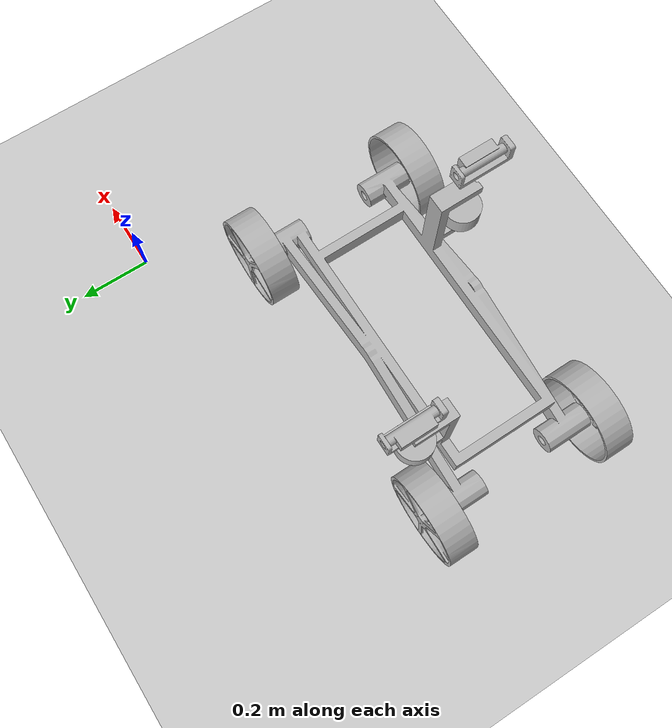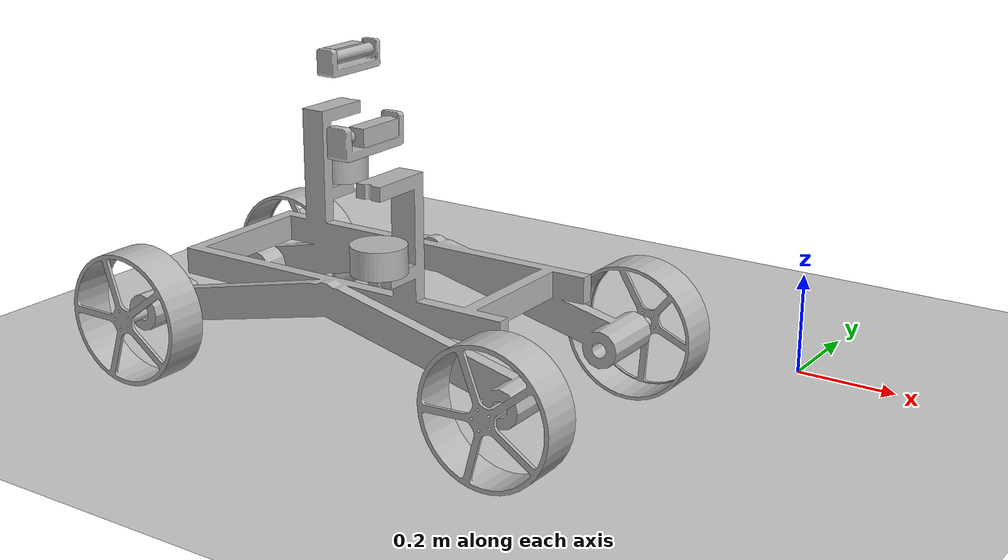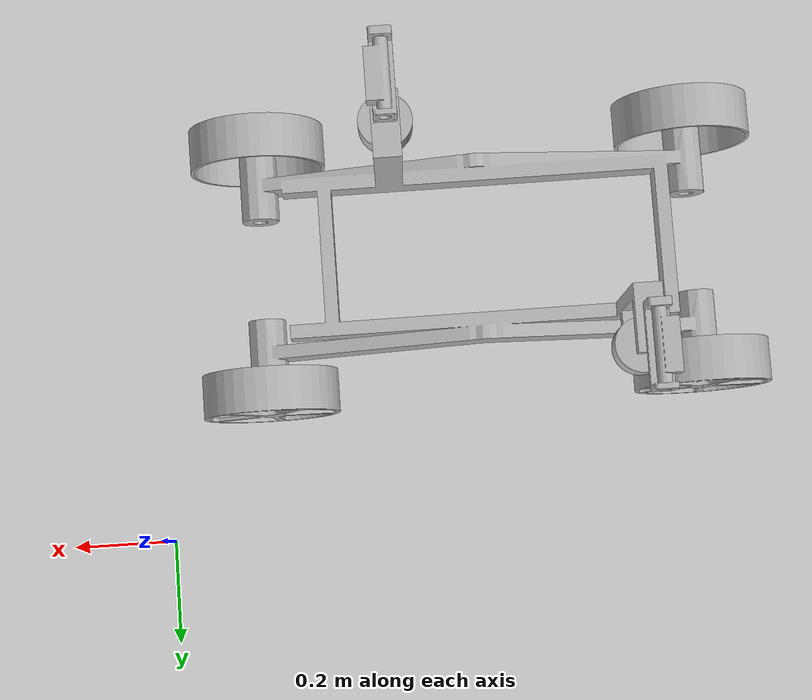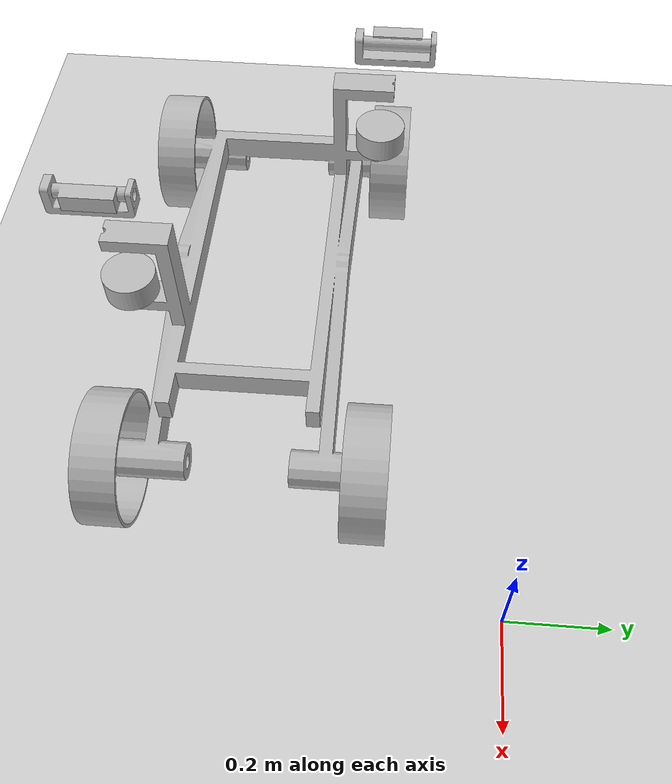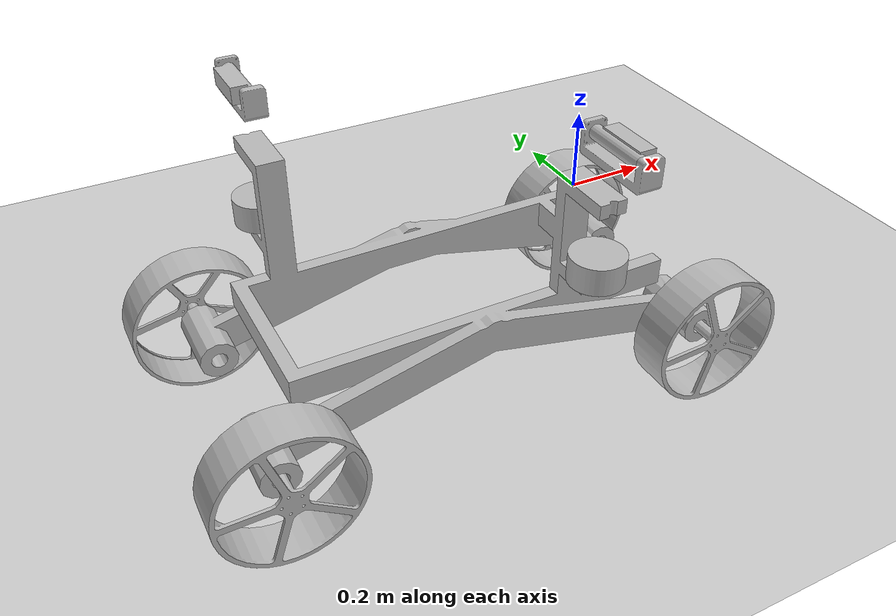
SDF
<sdf version="1.6">
 <world name="default">
  <light name="sun" type="directional">
   <pose>0 0 10 0 -0 0</pose>
   <diffuse>0.8 0.8 0.8 1</diffuse>
   <specular>0.2 0.2 0.2 1</specular>
   <attenuation>
    <range>1000</range>
    <constant>0.9</constant>
    <linear>0.01</linear>
    <quadratic>0.001</quadratic>
   </attenuation>
   <direction>-0.5 0.1 -0.9</direction>
  </light>
  <model name="ground_plane">
   <static>1</static>
   <link name="link">
    <collision name="collision">
     <geometry><plane><normal>0 0 1</normal><size>100 100</size></plane></geometry>
     <surface>
      <contact><collide_bitmask>65535</collide_bitmask></contact>
      <friction><ode><mu>100</mu><mu2>50</mu2></ode></friction>
     </surface>
    </collision>
    <visual name="visual">
     <cast_shadows>0</cast_shadows>
     <geometry><plane><normal>0 0 1</normal><size>100 100</size></plane></geometry>
     <material>
      <script><uri>file://media/materials/scripts/gazebo.material</uri><name>Gazebo/Grey</name></script>
     </material>
    </visual>
   </link>
  </model>
  <physics name="default_physics" default="0" type="ode">
   <real_time_update_rate>1000</real_time_update_rate>
   <max_step_size>0.001</max_step_size>
   <real_time_factor>1</real_time_factor>
   <ode>
    <solver>
     <type>quick</type>
     <iters>150</iters>
     <precon_iters>0</precon_iters>
     <sor>1.4</sor>
     <use_dynamic_moi_rescaling>1</use_dynamic_moi_rescaling>
    </solver>
    <constraints>
     <cfm>1e-05</cfm>
     <erp>0.2</erp>
     <contact_max_correcting_vel>2000</contact_max_correcting_vel>
     <contact_surface_layer>0.01</contact_surface_layer>
    </constraints>
   </ode>
  </physics>
  <scene><ambient>0.4 0.4 0.4 1</ambient><background>0.7 0.7 0.7 1</background><shadows>1</shadows></scene>
  <gravity>0 0 -9.8</gravity>
  <magnetic_field>6e-06 2.3e-05 -4.2e-05</magnetic_field>
  <atmosphere type="adiabatic"/>
  <audio><device>default</device></audio>
  <spherical_coordinates>
   <surface_model>EARTH_WGS84</surface_model>
   <latitude_deg>0</latitude_deg>
   <longitude_deg>0</longitude_deg>
   <elevation>0</elevation>
   <heading_deg>0</heading_deg>
  </spherical_coordinates>
  <model name="digbot4">
   <link name="base_link">
    <inertial>
     <pose>-0.006881 1.3e-05 0.034163 0 -0 0</pose>
     <mass>8.59264</mass>
     <inertia>
      <ixx>0.282821</ixx>
      <ixy>0.072769</ixy>
      <ixz>0.0135215</ixz>
      <iyy>0.718923</iyy>
      <iyz>-3.18961e-05</iyz>
      <izz>0.874825</izz>
     </inertia>
    </inertial>
    <collision name="base_link_collision">
     <geometry>
      <mesh><scale>1 1 1</scale><uri>/home/karen/catkin_ws/src/lunabotics/digbot4/meshes/base_link.STL</uri></mesh>
     </geometry>
    </collision>
    <collision name="base_link_fixed_joint_lump__front_lidar_collision_1">
     <pose>0.16885 -0.21895 0.17082 0 -0 0</pose>
     <geometry>
      <mesh>
       <scale>1 1 1</scale>
       <uri>/home/karen/catkin_ws/src/lunabotics/digbot4/meshes/front_lidar.STL</uri>
      </mesh>
     </geometry>
    </collision>
    <collision name="base_link_fixed_joint_lump__rear_lidar_collision_2">
     <pose>-0.2613 0.21895 0.17082 0 -0 0</pose>
     <geometry>
      <mesh><scale>1 1 1</scale><uri>/home/karen/catkin_ws/src/lunabotics/digbot4/meshes/rear_lidar.STL</uri></mesh>
     </geometry>
    </collision>
    <visual name="base_link_visual">
     <geometry>
      <mesh><scale>1 1 1</scale><uri>/home/karen/catkin_ws/src/lunabotics/digbot4/meshes/base_link.STL</uri></mesh>
     </geometry>
    </visual>
    <visual name="base_link_fixed_joint_lump__front_lidar_visual_1">
     <pose>0.16885 -0.21895 0.17082 0 -0 0</pose>
     <geometry>
      <mesh>
       <scale>1 1 1</scale>
       <uri>/home/karen/catkin_ws/src/lunabotics/digbot4/meshes/front_lidar.STL</uri>
      </mesh>
     </geometry>
    </visual>
    <visual name="base_link_fixed_joint_lump__rear_lidar_visual_2">
     <pose>-0.2613 0.21895 0.17082 0 -0 0</pose>
     <geometry>
      <mesh><scale>1 1 1</scale><uri>/home/karen/catkin_ws/src/lunabotics/digbot4/meshes/rear_lidar.STL</uri></mesh>
     </geometry>
    </visual>
   </link>
   <link name="front_cam_mount">
    <pose>0.16885 -0.24511 0.33858 0 -0 0</pose>
    <inertial>
     <pose>0 -0.006545 0.015077 0 -0 0</pose>
     <mass>0.12775</mass>
     <inertia>
      <ixx>0.00037354</ixx>
      <ixy>-2.3429e-20</ixy>
      <ixz>2.0753e-21</ixz>
      <iyy>4.4903e-05</iyy>
      <iyz>1.3028e-05</iyz>
      <izz>0.0003655</izz>
     </inertia>
    </inertial>
    <collision name="front_cam_mount_collision">
     <geometry>
      <mesh>
       <scale>1 1 1</scale>
       <uri>/home/karen/catkin_ws/src/lunabotics/digbot4/meshes/front_cam_mount.STL</uri>
      </mesh>
     </geometry>
    </collision>
    <visual name="front_cam_mount_visual">
     <geometry>
      <mesh>
       <scale>1 1 1</scale>
       <uri>/home/karen/catkin_ws/src/lunabotics/digbot4/meshes/front_cam_mount.STL</uri>
      </mesh>
     </geometry>
    </visual>
   </link>
   <joint name="front_cam_mount_joint" type="revolute">
    <child>front_cam_mount</child>
    <parent>base_link</parent>
    <axis>
     <xyz>0 0 -1</xyz>
     <limit><lower>-1e+16</lower><upper>1e+16</upper></limit>
     <dynamics>
      <damping>0.1</damping>
      <friction>1</friction>
      <spring_reference>0</spring_reference>
      <spring_stiffness>0</spring_stiffness>
     </dynamics>
     <use_parent_model_frame>1</use_parent_model_frame>
    </axis>
   </joint>
   <link name="front_cam">
    <pose>0.19885 -0.243437 0.374356 0 -0 0</pose>
    <inertial>
     <pose>-0.020781 0.000208 -8.8e-05 0 -0 0</pose>
     <mass>0.12893</mass>
     <inertia>
      <ixx>0.00014403</ixx>
      <ixy>2.4729e-07</ixy>
      <ixz>-1.3986e-07</ixz>
      <iyy>2.5851e-05</iyy>
      <iyz>5.0336e-09</iyz>
      <izz>0.00015223</izz>
     </inertia>
    </inertial>
    <collision name="front_cam_collision">
     <geometry>
      <mesh><scale>1 1 1</scale><uri>/home/karen/catkin_ws/src/lunabotics/digbot4/meshes/front_cam.STL</uri></mesh>
     </geometry>
    </collision>
    <visual name="front_cam_visual">
     <geometry>
      <mesh><scale>1 1 1</scale><uri>/home/karen/catkin_ws/src/lunabotics/digbot4/meshes/front_cam.STL</uri></mesh>
     </geometry>
    </visual>
   </link>
   <joint name="front_cam_joint" type="revolute">
    <child>front_cam</child>
    <parent>front_cam_mount</parent>
    <axis>
     <xyz>0 1 0</xyz>
     <limit><lower>0</lower><upper>0</upper><effort>1</effort><velocity>1</velocity></limit>
     <dynamics>
      <damping>0.1</damping>
      <friction>1</friction>
      <spring_reference>0</spring_reference>
      <spring_stiffness>0</spring_stiffness>
     </dynamics>
     <use_parent_model_frame>1</use_parent_model_frame>
    </axis>
   </joint>
   <link name="front_left_wheel">
    <pose>0.42137 0.28042 -0.070077 0 -0 0</pose>
    <inertial>
     <pose>-0 -0.039422 0 0 -0 0</pose>
     <mass>1.4333</mass>
     <inertia>
      <ixx>0.01081</ixx>
      <ixy>4.1184e-18</ixy>
      <ixz>6.5706e-18</ixz>
      <iyy>0.019308</iyy>
      <iyz>-1.627e-18</iyz>
      <izz>0.01081</izz>
     </inertia>
    </inertial>
    <collision name="front_left_wheel_collision">
     <geometry>
      <mesh>
       <scale>1 1 1</scale>
       <uri>/home/karen/catkin_ws/src/lunabotics/digbot4/meshes/front_left_wheel.STL</uri>
      </mesh>
     </geometry>
    </collision>
    <visual name="front_left_wheel_visual">
     <geometry>
      <mesh>
       <scale>1 1 1</scale>
       <uri>/home/karen/catkin_ws/src/lunabotics/digbot4/meshes/front_left_wheel.STL</uri>
      </mesh>
     </geometry>
    </visual>
   </link>
   <joint name="front_left_wheel_joint" type="revolute">
    <child>front_left_wheel</child>
    <parent>base_link</parent>
    <axis>
     <xyz>0 1 0</xyz>
     <limit><lower>-1e+16</lower><upper>1e+16</upper></limit>
     <dynamics>
      <damping>0.1</damping>
      <friction>1</friction>
      <spring_reference>0</spring_reference>
      <spring_stiffness>0</spring_stiffness>
     </dynamics>
     <use_parent_model_frame>1</use_parent_model_frame>
    </axis>
   </joint>
   <link name="front_right_wheel">
    <pose>0.42137 -0.28042 -0.070077 0 -0 0</pose>
    <inertial>
     <pose>0 0.039422 -0 0 -0 0</pose>
     <mass>1.4333</mass>
     <inertia>
      <ixx>0.01081</ixx>
      <ixy>-8.2595e-19</ixy>
      <ixz>-2.4271e-18</ixz>
      <iyy>0.019308</iyy>
      <iyz>-1.3775e-18</iyz>
      <izz>0.01081</izz>
     </inertia>
    </inertial>
    <collision name="front_right_wheel_collision">
     <geometry>
      <mesh>
       <scale>1 1 1</scale>
       <uri>/home/karen/catkin_ws/src/lunabotics/digbot4/meshes/front_right_wheel.STL</uri>
      </mesh>
     </geometry>
    </collision>
    <visual name="front_right_wheel_visual">
     <geometry>
      <mesh>
       <scale>1 1 1</scale>
       <uri>/home/karen/catkin_ws/src/lunabotics/digbot4/meshes/front_right_wheel.STL</uri>
      </mesh>
     </geometry>
    </visual>
   </link>
   <joint name="front_right_wheel_joint" type="revolute">
    <child>front_right_wheel</child>
    <parent>base_link</parent>
    <axis>
     <xyz>0 1 0</xyz>
     <limit><lower>-1e+16</lower><upper>1e+16</upper></limit>
     <dynamics>
      <damping>0.1</damping>
      <friction>1</friction>
      <spring_reference>0</spring_reference>
      <spring_stiffness>0</spring_stiffness>
     </dynamics>
     <use_parent_model_frame>1</use_parent_model_frame>
    </axis>
   </joint>
   <link name="rear_cam_mount">
    <pose>-0.2613 0.24511 0.33858 0 -0 0</pose>
    <inertial>
     <pose>0 -0.006545 0.015077 0 -0 0</pose>
     <mass>0.12775</mass>
     <inertia>
      <ixx>0.00037354</ixx>
      <ixy>-1.6912e-21</ixy>
      <ixz>1.8625e-20</ixz>
      <iyy>4.4903e-05</iyy>
      <iyz>1.3028e-05</iyz>
      <izz>0.0003655</izz>
     </inertia>
    </inertial>
    <collision name="rear_cam_mount_collision">
     <geometry>
      <mesh>
       <scale>1 1 1</scale>
       <uri>/home/karen/catkin_ws/src/lunabotics/digbot4/meshes/rear_cam_mount.STL</uri>
      </mesh>
     </geometry>
    </collision>
    <visual name="rear_cam_mount_visual">
     <geometry>
      <mesh>
       <scale>1 1 1</scale>
       <uri>/home/karen/catkin_ws/src/lunabotics/digbot4/meshes/rear_cam_mount.STL</uri>
      </mesh>
     </geometry>
    </visual>
   </link>
   <joint name="rear_cam_mount_joint" type="revolute">
    <child>rear_cam_mount</child>
    <parent>base_link</parent>
    <axis>
     <xyz>0 0 -1</xyz>
     <limit><lower>-1e+16</lower><upper>1e+16</upper></limit>
     <dynamics>
      <damping>0.1</damping>
      <friction>1</friction>
      <spring_reference>0</spring_reference>
      <spring_stiffness>0</spring_stiffness>
     </dynamics>
     <use_parent_model_frame>1</use_parent_model_frame>
    </axis>
   </joint>
   <link name="rear_cam">
    <pose>-0.2913 0.246524 0.374356 0 -0 0</pose>
    <inertial>
     <pose>0.020781 -0.000208 -8.8e-05 0 -0 0</pose>
     <mass>0.12893</mass>
     <inertia>
      <ixx>0.00014403</ixx>
      <ixy>2.4729e-07</ixy>
      <ixz>1.3986e-07</ixz>
      <iyy>2.5851e-05</iyy>
      <iyz>-5.0336e-09</iyz>
      <izz>0.00015223</izz>
     </inertia>
    </inertial>
    <collision name="rear_cam_collision">
     <geometry>
      <mesh><scale>1 1 1</scale><uri>/home/karen/catkin_ws/src/lunabotics/digbot4/meshes/rear_cam.STL</uri></mesh>
     </geometry>
    </collision>
    <visual name="rear_cam_visual">
     <geometry>
      <mesh><scale>1 1 1</scale><uri>/home/karen/catkin_ws/src/lunabotics/digbot4/meshes/rear_cam.STL</uri></mesh>
     </geometry>
    </visual>
   </link>
   <joint name="rear_cam_joint" type="revolute">
    <child>rear_cam</child>
    <parent>rear_cam_mount</parent>
    <axis>
     <xyz>0 1 0</xyz>
     <limit><lower>0</lower><upper>0</upper><effort>1</effort><velocity>1</velocity></limit>
     <dynamics>
      <damping>0.1</damping>
      <friction>1</friction>
      <spring_reference>0</spring_reference>
      <spring_stiffness>0</spring_stiffness>
     </dynamics>
     <use_parent_model_frame>1</use_parent_model_frame>
    </axis>
   </joint>
   <link name="rear_left_wheel">
    <pose>-0.40574 0.28042 -0.070077 0 -0 0</pose>
    <inertial>
     <pose>0 -0.039422 0 0 -0 0</pose>
     <mass>1.4333</mass>
     <inertia>
      <ixx>0.01081</ixx>
      <ixy>4.7944e-18</ixy>
      <ixz>-6.2535e-19</ixz>
      <iyy>0.019308</iyy>
      <iyz>-6.9202e-19</iyz>
      <izz>0.01081</izz>
     </inertia>
    </inertial>
    <collision name="rear_left_wheel_collision">
     <geometry>
      <mesh>
       <scale>1 1 1</scale>
       <uri>/home/karen/catkin_ws/src/lunabotics/digbot4/meshes/rear_left_wheel.STL</uri>
      </mesh>
     </geometry>
    </collision>
    <visual name="rear_left_wheel_visual">
     <geometry>
      <mesh>
       <scale>1 1 1</scale>
       <uri>/home/karen/catkin_ws/src/lunabotics/digbot4/meshes/rear_left_wheel.STL</uri>
      </mesh>
     </geometry>
    </visual>
   </link>
   <joint name="rear_left_wheel_joint" type="revolute">
    <child>rear_left_wheel</child>
    <parent>base_link</parent>
    <axis>
     <xyz>0 1 0</xyz>
     <limit><lower>-1e+16</lower><upper>1e+16</upper></limit>
     <dynamics>
      <damping>0.1</damping>
      <friction>1</friction>
      <spring_reference>0</spring_reference>
      <spring_stiffness>0</spring_stiffness>
     </dynamics>
     <use_parent_model_frame>1</use_parent_model_frame>
    </axis>
   </joint>
   <link name="rear_right_wheel">
    <pose>-0.40574 -0.28042 -0.070077 0 -0 0</pose>
    <inertial>
     <pose>0 0.039422 0 0 -0 0</pose>
     <mass>1.4333</mass>
     <inertia>
      <ixx>0.01081</ixx>
      <ixy>1.9177e-18</ixy>
      <ixz>-1.933e-18</ixz>
      <iyy>0.019308</iyy>
      <iyz>-1.1321e-18</iyz>
      <izz>0.01081</izz>
     </inertia>
    </inertial>
    <collision name="rear_right_wheel_collision">
     <geometry>
      <mesh>
       <scale>1 1 1</scale>
       <uri>/home/karen/catkin_ws/src/lunabotics/digbot4/meshes/rear_right_wheel.STL</uri>
      </mesh>
     </geometry>
    </collision>
    <visual name="rear_right_wheel_visual">
     <geometry>
      <mesh>
       <scale>1 1 1</scale>
       <uri>/home/karen/catkin_ws/src/lunabotics/digbot4/meshes/rear_right_wheel.STL</uri>
      </mesh>
     </geometry>
    </visual>
   </link>
   <joint name="rear_right_wheel_joint" type="revolute">
    <child>rear_right_wheel</child>
    <parent>base_link</parent>
    <axis>
     <xyz>0 1 0</xyz>
     <limit><lower>-1e+16</lower><upper>1e+16</upper></limit>
     <dynamics>
      <damping>0.1</damping>
      <friction>1</friction>
      <spring_reference>0</spring_reference>
      <spring_stiffness>0</spring_stiffness>
     </dynamics>
     <use_parent_model_frame>1</use_parent_model_frame>
    </axis>
   </joint>
   <static>0</static>
   <plugin name="skid_steer_drive_controller" filename="libgazebo_ros_skid_steer_drive.so">
    <updateRate>10</updateRate>
    <robotNamespace>/</robotNamespace>
    <leftFrontJoint>front_left_wheel_joint</leftFrontJoint>
    <rightFrontJoint>front_right_wheel_joint</rightFrontJoint>
    <leftRearJoint>rear_left_wheel_joint</leftRearJoint>
    <rightRearJoint>rear_right_wheel_joint</rightRearJoint>
    <wheelSeparation>0.83</wheelSeparation>
    <wheelDiameter>0.260</wheelDiameter>
    <robotBaseFrame>base_link</robotBaseFrame>
    <torque>100</torque>
    <topicName>cmd_vel</topicName>
    <broadcastTF>1</broadcastTF>
   </plugin>
   <pose>-0.633927 -0.507985 0.200194 0.000183 5e-05 0.005387</pose>
  </model>
 </world>
</sdf>
